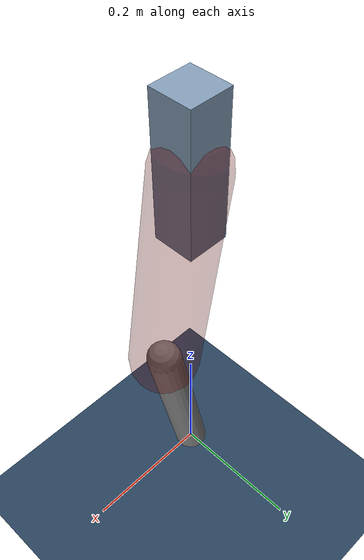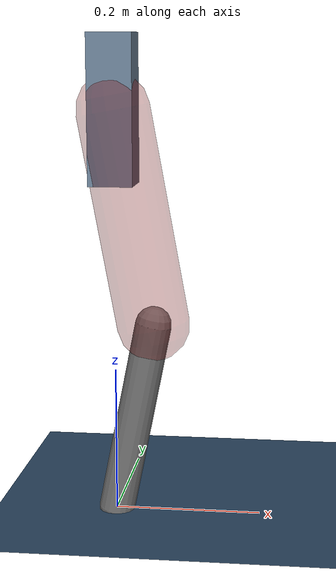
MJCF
<mujoco model="Hopper2D">
	<compiler inertiafromgeom="true" angle="radian" />
	<option timestep="0.001" integrator="implicit" cone="elliptic" solver="Newton" tolerance="1e-10" />

	<default>
		<geom contype="1" conaffinity="1" condim="3" friction="2 0.005 0.0001" solref="0.005 1" />
		<joint limited="true" damping="0.1" />
	</default>

	<asset>
		<texture name="skybox" type="skybox" builtin="gradient" rgb1=".4 .6 .8" rgb2="0 0 0" width="800" height="800" />
		<texture name="grid" type="2d" builtin="checker" rgb1=".1 .2 .3" rgb2=".2 .3 .4" width="300" height="300" mark="edge" markrgb=".2 .3 .4" />
		<material name="ground" texture="grid" texrepeat="1 1" texuniform="true" reflectance="0.1" />
		<material name="leg" rgba="0.5 0.6 0.7 1" />
	</asset>

	<worldbody>

		<geom name="floor" type="plane" size="5 5 0.25" material="ground" />

		<light directional="false" diffuse="0.8 0.8 0.8" specular="0.3 0.3 0.3" pos="0 0 2" dir="0 0 -1" />
		<light mode="targetbodycom" target="base" directional="false" diffuse="0.8 0.8 0.8" specular="0.3 0.3 0.3" pos="0 0 2" dir="0 0 -1" />

		<camera name="fixed" pos="0 -2 1" xyaxes="1 0 0 0 0 1" />
		<camera name="tracking" mode="trackcom" pos="0 -3 1" />

		<body name="root" pos="0 0 0.5568748828113839">
			<joint name="slide_x" type="slide" axis="1 0 0" range="-100 100" />
			<joint name="slide_z" type="slide" axis="0 0 1" range="0 10" />

			<body name="base" pos="0 0 0">
				<geom name="torso" type="box" size="0.03 0.03 0.1" mass="2.269" material="leg" />

				<body name="link1" pos="0 0 0" euler="0 1.3907143986629613 0">
					<joint type="hinge" axis="0 -1 0" pos="0 0 0" name="hinge1" limited="true" range="-3.14 3.14" stiffness="0" damping="0.1" />
					<geom name="thigh" type="capsule" fromto="0 0 0 0.29564253060354345 0 0" size="0.05" rgba="0.5 0 0 0.3" mass="0.976970579569213" />

					<body name="link2" pos="0.29564253060354345 0 0" euler="0 0.3765734867813049 0">
						<joint type="hinge" axis="0 -1 0" pos="0 0 0" name="hinge2" limited="true" range="-3.14 3.14" stiffness="0" damping="0.1" />
						<geom name="shank" type="capsule" fromto="0 0 0 0.27123235220784037 0 0" size="0.025" mass="0.45998588176627225" />

					</body>
				</body>
			</body>
		</body>
	</worldbody>

	<actuator>
		<motor name="torque1" joint="hinge1" ctrlrange="-48.721476670781946 48.721476670781946" ctrllimited="true" gear="1" />
		<motor name="torque2" joint="hinge2" ctrlrange="-20.737733657659646 20.737733657659646" ctrllimited="true" gear="1" />
	</actuator>
</mujoco>
